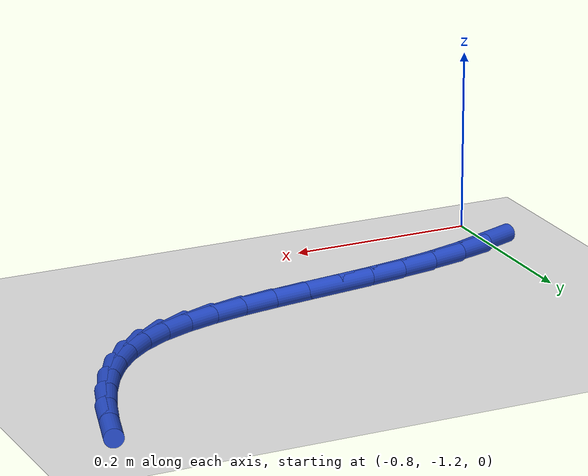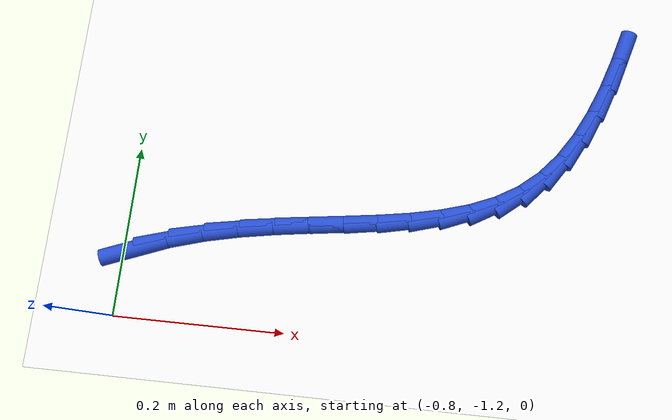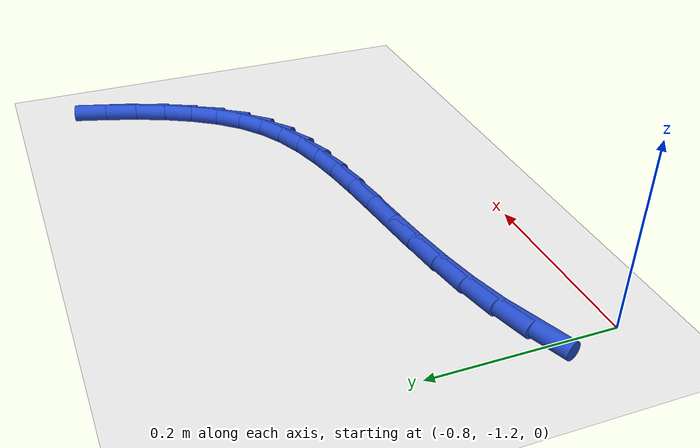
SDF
<sdf version="1.6">
 <world name="default">
  <model name="ground_plane">
   <static>1</static>
   <link name="link">
    <collision name="collision">
     <geometry><plane><normal>0 0 1</normal><size>100 100</size></plane></geometry>
     <surface><friction><ode><mu>100</mu><mu2>50</mu2></ode></friction></surface>
    </collision>
    <visual name="visual">
     <cast_shadows>0</cast_shadows>
     <geometry><plane><normal>0 0 1</normal><size>100 100</size></plane></geometry>
     <material>
      <script><uri>file://media/materials/scripts/gazebo.material</uri><name>Gazebo/WhiteGlow</name></script>
     </material>
    </visual>
   </link>
  </model>
  <model name="line">
   <link name="link_190">
    <pose>-0.7851440314356107 -1.121313296763832 0.01 0 1.57 0.3712022375579997</pose>
    <collision name="collision">
     <geometry><cylinder><radius>0.01</radius><length>0.08</length></cylinder></geometry>
    </collision>
    <visual name="visual">
     <material>
      <script><name>Gazebo/Blue</name><uri>file://media/materials/scripts/gazebo.material</uri></script>
     </material>
     <geometry><cylinder><radius>0.01</radius><length>0.08</length></cylinder></geometry>
    </visual>
   </link>
   <link name="link_191">
    <pose>-0.7465147685261897 -1.1062769756513158 0.01 0 1.57 0.28616752482161223</pose>
    <collision name="collision">
     <geometry><cylinder><radius>0.01</radius><length>0.08</length></cylinder></geometry>
    </collision>
    <visual name="visual">
     <material>
      <script><name>Gazebo/Blue</name><uri>file://media/materials/scripts/gazebo.material</uri></script>
     </material>
     <geometry><cylinder><radius>0.01</radius><length>0.08</length></cylinder></geometry>
    </visual>
   </link>
   <link name="link_192">
    <pose>-0.7067513368101555 -1.0945768333460923 0.01 0 1.57 0.22008616287812083</pose>
    <collision name="collision">
     <geometry><cylinder><radius>0.01</radius><length>0.08</length></cylinder></geometry>
    </collision>
    <visual name="visual">
     <material>
      <script><name>Gazebo/Blue</name><uri>file://media/materials/scripts/gazebo.material</uri></script>
     </material>
     <geometry><cylinder><radius>0.01</radius><length>0.08</length></cylinder></geometry>
    </visual>
   </link>
   <link name="link_193">
    <pose>-0.6662689401151307 -1.085520520641387 0.01 0 1.57 0.1724665636126358</pose>
    <collision name="collision">
     <geometry><cylinder><radius>0.01</radius><length>0.08</length></cylinder></geometry>
    </collision>
    <visual name="visual">
     <material>
      <script><name>Gazebo/Blue</name><uri>file://media/materials/scripts/gazebo.material</uri></script>
     </material>
     <geometry><cylinder><radius>0.01</radius><length>0.08</length></cylinder></geometry>
    </visual>
   </link>
   <link name="link_194">
    <pose>-0.625482782268736 -1.0784156883304232 0.01 0 1.57 0.14274089165014886</pose>
    <collision name="collision">
     <geometry><cylinder><radius>0.01</radius><length>0.08</length></cylinder></geometry>
    </collision>
    <visual name="visual">
     <material>
      <script><name>Gazebo/Blue</name><uri>file://media/materials/scripts/gazebo.material</uri></script>
     </material>
     <geometry><cylinder><radius>0.01</radius><length>0.08</length></cylinder></geometry>
    </visual>
   </link>
   <link name="link_195">
    <pose>-0.5848080670985926 -1.0725699872064265 0.01 0 1.57 0.1307362788483877</pose>
    <collision name="collision">
     <geometry><cylinder><radius>0.01</radius><length>0.08</length></cylinder></geometry>
    </collision>
    <visual name="visual">
     <material>
      <script><name>Gazebo/Blue</name><uri>file://media/materials/scripts/gazebo.material</uri></script>
     </material>
     <geometry><cylinder><radius>0.01</radius><length>0.08</length></cylinder></geometry>
    </visual>
   </link>
   <link name="link_196">
    <pose>-0.5446599984323217 -1.0672910680626218 0.01 0 1.57 0.1369843784025946</pose>
    <collision name="collision">
     <geometry><cylinder><radius>0.01</radius><length>0.08</length></cylinder></geometry>
    </collision>
    <visual name="visual">
     <material>
      <script><name>Gazebo/Blue</name><uri>file://media/materials/scripts/gazebo.material</uri></script>
     </material>
     <geometry><cylinder><radius>0.01</radius><length>0.08</length></cylinder></geometry>
    </visual>
   </link>
   <link name="link_197">
    <pose>-0.5054537800975437 -1.0618865816922327 0.01 0 1.57 0.16294247014156404</pose>
    <collision name="collision">
     <geometry><cylinder><radius>0.01</radius><length>0.08</length></cylinder></geometry>
    </collision>
    <visual name="visual">
     <material>
      <script><name>Gazebo/Blue</name><uri>file://media/materials/scripts/gazebo.material</uri></script>
     </material>
     <geometry><cylinder><radius>0.01</radius><length>0.08</length></cylinder></geometry>
    </visual>
   </link>
   <link name="link_198">
    <pose>-0.46760461592188196 -1.055664178888485 0.01 0 1.57 0.2111437608657101</pose>
    <collision name="collision">
     <geometry><cylinder><radius>0.01</radius><length>0.08</length></cylinder></geometry>
    </collision>
    <visual name="visual">
     <material>
      <script><name>Gazebo/Blue</name><uri>file://media/materials/scripts/gazebo.material</uri></script>
     </material>
     <geometry><cylinder><radius>0.01</radius><length>0.08</length></cylinder></geometry>
    </visual>
   </link>
   <link name="link_199">
    <pose>-0.43152770973295657 -1.0479315104446028 0.01 0 1.57 0.28517670787346094</pose>
    <collision name="collision">
     <geometry><cylinder><radius>0.01</radius><length>0.08</length></cylinder></geometry>
    </collision>
    <visual name="visual">
     <material>
      <script><name>Gazebo/Blue</name><uri>file://media/materials/scripts/gazebo.material</uri></script>
     </material>
     <geometry><cylinder><radius>0.01</radius><length>0.08</length></cylinder></geometry>
    </visual>
   </link>
   <link name="link_200">
    <pose>-0.3976382653583889 -1.037996227153811 0.01 0 1.57 0.38917023433762665</pose>
    <collision name="collision">
     <geometry><cylinder><radius>0.01</radius><length>0.08</length></cylinder></geometry>
    </collision>
    <visual name="visual">
     <material>
      <script><name>Gazebo/Blue</name><uri>file://media/materials/scripts/gazebo.material</uri></script>
     </material>
     <geometry><cylinder><radius>0.01</radius><length>0.08</length></cylinder></geometry>
    </visual>
   </link>
   <link name="link_201">
    <pose>-0.3663514866257995 -1.0251659798093335 0.01 0 1.57 0.5261551776406144</pose>
    <collision name="collision">
     <geometry><cylinder><radius>0.01</radius><length>0.08</length></cylinder></geometry>
    </collision>
    <visual name="visual">
     <material>
      <script><name>Gazebo/Blue</name><uri>file://media/materials/scripts/gazebo.material</uri></script>
     </material>
     <geometry><cylinder><radius>0.01</radius><length>0.08</length></cylinder></geometry>
    </visual>
   </link>
   <link name="link_202">
    <pose>-0.3380825773628112 -1.0087484192043963 0.01 0 1.57 0.6918974626299925</pose>
    <collision name="collision">
     <geometry><cylinder><radius>0.01</radius><length>0.08</length></cylinder></geometry>
    </collision>
    <visual name="visual">
     <material>
      <script><name>Gazebo/Blue</name><uri>file://media/materials/scripts/gazebo.material</uri></script>
     </material>
     <geometry><cylinder><radius>0.01</radius><length>0.08</length></cylinder></geometry>
    </visual>
   </link>
   <link name="link_203">
    <pose>-0.3131934945408434 -0.9881270403291548 0.01 0 1.57 0.8523105656757437</pose>
    <collision name="collision">
     <geometry><cylinder><radius>0.01</radius><length>0.08</length></cylinder></geometry>
    </collision>
    <visual name="visual">
     <material>
      <script><name>Gazebo/Blue</name><uri>file://media/materials/scripts/gazebo.material</uri></script>
     </material>
     <geometry><cylinder><radius>0.01</radius><length>0.08</length></cylinder></geometry>
    </visual>
   </link>
   <link name="link_204">
    <pose>-0.2915568859068814 -0.9633823044892681 0.01 0 1.57 0.9868704261106768</pose>
    <collision name="collision">
     <geometry><cylinder><radius>0.01</radius><length>0.08</length></cylinder></geometry>
    </collision>
    <visual name="visual">
     <material>
      <script><name>Gazebo/Blue</name><uri>file://media/materials/scripts/gazebo.material</uri></script>
     </material>
     <geometry><cylinder><radius>0.01</radius><length>0.08</length></cylinder></geometry>
    </visual>
   </link>
   <link name="link_205">
    <pose>-0.27278205643821957 -0.9349697753402777 0.01 0 1.57 1.0946861343071514</pose>
    <collision name="collision">
     <geometry><cylinder><radius>0.01</radius><length>0.08</length></cylinder></geometry>
    </collision>
    <visual name="visual">
     <material>
      <script><name>Gazebo/Blue</name><uri>file://media/materials/scripts/gazebo.material</uri></script>
     </material>
     <geometry><cylinder><radius>0.01</radius><length>0.08</length></cylinder></geometry>
    </visual>
   </link>
   <link name="link_206">
    <pose>-0.25647577047655845 -0.9033486353892418 0.01 0 1.57 1.178240728707983</pose>
    <collision name="collision">
     <geometry><cylinder><radius>0.01</radius><length>0.08</length></cylinder></geometry>
    </collision>
    <visual name="visual">
     <material>
      <script><name>Gazebo/Blue</name><uri>file://media/materials/scripts/gazebo.material</uri></script>
     </material>
     <geometry><cylinder><radius>0.01</radius><length>0.08</length></cylinder></geometry>
    </visual>
   </link>
   <link name="link_207">
    <pose>-0.24224479236359928 -0.8689780671432207 0.01 0 1.57 1.2409998113070848</pose>
    <collision name="collision">
     <geometry><cylinder><radius>0.01</radius><length>0.08</length></cylinder></geometry>
    </collision>
    <visual name="visual">
     <material>
      <script><name>Gazebo/Blue</name><uri>file://media/materials/scripts/gazebo.material</uri></script>
     </material>
     <geometry><cylinder><radius>0.01</radius><length>0.08</length></cylinder></geometry>
    </visual>
   </link>
   <link name="link_208">
    <pose>-0.22969588644104236 -0.8323172531092723 0.01 0 1.57 1.2862057846557726</pose>
    <collision name="collision">
     <geometry><cylinder><radius>0.01</radius><length>0.08</length></cylinder></geometry>
    </collision>
    <visual name="visual">
     <material>
      <script><name>Gazebo/Blue</name><uri>file://media/materials/scripts/gazebo.material</uri></script>
     </material>
     <geometry><cylinder><radius>0.01</radius><length>0.08</length></cylinder></geometry>
    </visual>
   </link>
  </model>
 </world>
</sdf>
